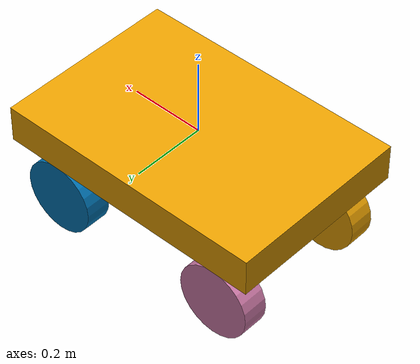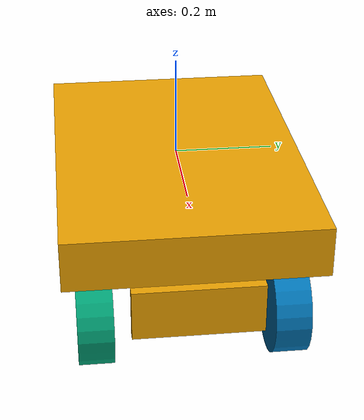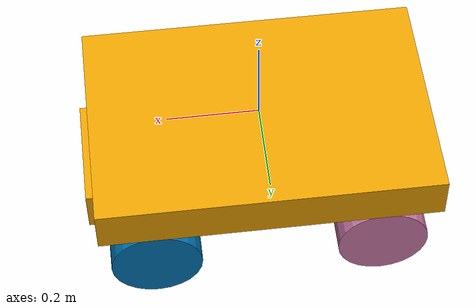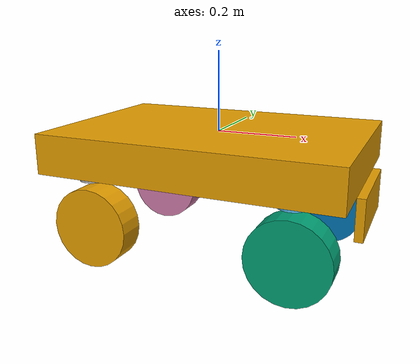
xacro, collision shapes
<?xml version="1.0" encoding="utf-8"?>
<robot name="ranger_mini_v3" xmlns:xacro="http://ros.org/wiki/xacro">

  <!-- Chassis collision properties -->
  <xacro:property name="chassis_x" value="0.74" />
  <xacro:property name="chassis_y" value="0.5" />
  <xacro:property name="chassis_z" value="0.1" />
  <xacro:property name="chassis_z_origin" value="-0.04" />
  <xacro:property name="chassis_sensor_x" value="0.02" />
  <xacro:property name="chassis_sensor_y" value="0.25" />
  <xacro:property name="chassis_sensor_z" value="0.1" />
  <xacro:property name="chassis_sensor_x_origin" value="0.38" />
  <xacro:property name="chassis_sensor_z_origin" value="-0.14" />

  <!-- Wheel steering collision properties -->
  <xacro:property name="wheel_steering_radius" value="0.035" />
  <xacro:property name="wheel_steering_length" value="0.01" />

  <!-- Wheel collision properties -->
  <xacro:property name="wheel_radius" value="0.1" />
  <xacro:property name="wheel_length" value="0.07" />

  <link name="base_link">
    <inertial>
      <mass value="10" />
      <origin xyz="-0.0242698272228022 -0.0030308024613212 0.0544267444673498" rpy="0 0 0" />
      <inertia ixx="0.1354" ixy="0.0" ixz="0.0" iyy="0.2417" iyz="0.0" izz="0.3085" />
    </inertial>
    <visual>
      <origin xyz="0 0 0" rpy="3.141593 0 0" />
      <geometry>
        <mesh filename="package://ranger_mini_v3/meshes/ranger_mini3.dae" />
      </geometry>
    </visual>
    <collision>
      <origin xyz="0 0 ${chassis_z_origin}" rpy="0 0 0" />
      <geometry>
        <box size="${chassis_x} ${chassis_y} ${chassis_z}" />
      </geometry>
    </collision>
    <collision>
      <origin xyz="${chassis_sensor_x_origin} 0 ${chassis_sensor_z_origin}" rpy="0 0 0" />
      <geometry>
        <box size="${chassis_sensor_x} ${chassis_sensor_y} ${chassis_sensor_z}" />
      </geometry>
    </collision>
  </link>

  <link name="fr_steering_wheel_link">
    <inertial>
      <mass value="1" />
      <origin xyz="1.8493E-05 1.2713E-06 0.043679" rpy="0 0 0" />
      <inertia ixx="0.0063625" ixy="-1.0581E-07" ixz="-4.0831E-07" iyy="0.006363" iyz="-3.4944E-08" izz="0.010465" />
    </inertial>
    <visual>
      <origin xyz="0 0 0" rpy="1.570796 0 0" />
      <geometry>
        <mesh filename="package://ranger_mini_v3/meshes/ranger_mini_v3_wheel_steering.dae" />
      </geometry>
    </visual>
    <collision>
      <origin xyz="0 0 0" rpy="0 0 0" />
      <geometry>
        <cylinder radius="${wheel_steering_radius}" length="${wheel_steering_length}" />
      </geometry>
    </collision>
  </link>

  <joint name="fr_steering_joint" type="revolute">
    <origin xyz="0.25 -0.19 -0.1" rpy="0 0 0" />
    <parent link="base_link" />
    <child link="fr_steering_wheel_link" />
    <axis xyz="0 0 -1" />
    <limit effort="5" velocity="6.28" lower="-2.094" upper="2.094" />
  </joint>

  <link name="fr_wheel_link">
    <inertial>
      <mass value="8" />
      <origin xyz="0 0 0" />
      <inertia ixx="0.02047" ixy="0.0" ixz="0.0" iyy="0.02047" iyz="0.0" izz="0.0324" />
    </inertial>
    <visual>
      <origin xyz="0 0 0" rpy="1.570796 0 0" />
      <geometry>
        <mesh filename="package://ranger_mini_v3/meshes/ranger_mini_v3_wheel_tyre.dae" />
      </geometry>
    </visual>
    <collision>
      <origin xyz="0 0 0" rpy="1.570796 0 0" />
      <geometry>
        <cylinder radius="0.10" length="0.07" />
        <cylinder radius="${wheel_radius}" length="${wheel_length}" />
      </geometry>
      <contact>
        <ode>
          <min_depth>0.001</min_depth>
        </ode>
      </contact>
    </collision>
  </link>

  <joint name="fr_wheel" type="continuous">
    <origin xyz="0.0 0.0 -0.123" rpy="0 0 0" />
    <parent link="fr_steering_wheel_link" />
    <child link="fr_wheel_link" />
    <axis xyz="0 1 0" rpy="0 0 0" />
  </joint>

  <link name="fl_steering_wheel_link">
    <inertial>
      <mass value="1" />
      <origin xyz="-0.0017956 -9.6304E-08 0.043642" rpy="0 0 0" />
      <inertia ixx="0.0063695" ixy="-2.1067E-08" ixz="-0.00016867" iyy="0.006363" iyz="-1.0301E-08" izz="0.010458" />
    </inertial>
    <visual>
      <origin xyz="0 0 0" rpy="1.570796 0 3.141593" />
      <geometry>
        <mesh filename="package://ranger_mini_v3/meshes/ranger_mini_v3_wheel_steering.dae" />
      </geometry>
    </visual>
    <collision>
      <origin xyz="0 0 0" rpy="0 0 0" />
      <geometry>
        <cylinder radius="${wheel_steering_radius}" length="${wheel_steering_length}" />
      </geometry>
    </collision>
  </link>

  <joint name="fl_steering_joint" type="revolute">
    <origin xyz="0.25 0.19 -0.1" rpy="0 0 0" />
    <parent link="base_link" />
    <child link="fl_steering_wheel_link" />
    <axis xyz="0 0 -1" />
    <limit effort="5" velocity="6.28" lower="-2.094" upper="2.094" />
  </joint>

  <link name="fl_wheel_link">
    <inertial>
      <mass value="8" />
      <origin xyz="0 0 0" />
      <inertia ixx="0.02047" ixy="0.0" ixz="0.0" iyy="0.02047" iyz="0.0" izz="0.0324" />
    </inertial>
    <visual>
      <origin xyz="0 0 0" rpy="-1.570796 0 0" />
      <geometry>
        <mesh filename="package://ranger_mini_v3/meshes/ranger_mini_v3_wheel_tyre.dae" />
      </geometry>
    </visual>
    <collision>
      <origin xyz="0 0 0" rpy="-1.570796 0 0" />
      <geometry>
        <cylinder radius="${wheel_radius}" length="${wheel_length}" />
      </geometry>
      <contact>
        <ode>
          <min_depth>0.001</min_depth>
        </ode>
      </contact>
    </collision>
  </link>

  <joint name="fl_wheel" type="continuous">
    <origin xyz="0.0 0.0 -0.123" rpy="0 0 0" />
    <parent link="fl_steering_wheel_link" />
    <child link="fl_wheel_link" />
    <axis xyz="0 1 0" rpy="0 0 0" />
  </joint>

  <link name="rl_steering_wheel_link">
    <inertial>
      <mass value="1" />
      <origin xyz="-0.00017093 6.1255E-08 0.043678" rpy="0 0 0" />
      <inertia ixx="0.0063627" ixy="-2.1069E-08" ixz="-1.587E-05" iyy="0.006363" iyz="9.3201E-09" izz="0.010465" />
    </inertial>
    <visual>
      <origin xyz="0 0 0" rpy="1.570796 0.0 3.141593" />
      <geometry>
        <mesh filename="package://ranger_mini_v3/meshes/ranger_mini_v3_wheel_steering.dae" />
      </geometry>
    </visual>
    <collision>
      <origin xyz="0 0 0" rpy="0 0 0" />
      <geometry>
        <cylinder radius="${wheel_steering_radius}" length="${wheel_steering_length}" />
      </geometry>
    </collision>
  </link>

  <joint name="rl_steering_joint" type="revolute">
    <origin xyz="-0.25 0.19 -0.1" rpy="0 0 0" />
    <parent link="base_link" />
    <child link="rl_steering_wheel_link" />
    <axis xyz="0 0 -1" />
    <limit effort="5" velocity="6.28" lower="-2.094" upper="2.094" />
  </joint>

  <link name="rl_wheel_link">
    <inertial>
      <mass value="8" />
      <origin xyz="0 0 0" />
      <inertia ixx="0.02047" ixy="0.0" ixz="0.0" iyy="0.02047" iyz="0.0" izz="0.0324" />
    </inertial>
    <visual>
      <origin xyz="0 0 0" rpy="-1.570796 0 0" />
      <geometry>
        <mesh filename="package://ranger_mini_v3/meshes/ranger_mini_v3_wheel_tyre.dae" />
      </geometry>
    </visual>
    <collision>
      <origin xyz="0 0 0" rpy="-1.570796 0 0" />
      <geometry>
        <cylinder radius="${wheel_radius}" length="${wheel_length}" />
      </geometry>
      <contact>
        <ode>
          <min_depth>0.001</min_depth>
        </ode>
      </contact>
    </collision>
  </link>

  <joint name="rl_wheel" type="continuous">
    <origin xyz="0.0 0.0 -0.123 " rpy="0 0 0" />
    <parent link="rl_steering_wheel_link" />
    <child link="rl_wheel_link" />
    <axis xyz="0 1 0" rpy="0 0 0" />
  </joint>

  <link name="rr_steering_wheel_link">
    <inertial>
      <mass value="1" />
      <origin xyz="0.0 0.0 0.0" />
      <inertia ixx="0.01" ixy="0.0" ixz="0.0" iyy="0.01" iyz="0.0" izz="0.01" />
    </inertial>
    <visual>
      <origin xyz="0 0 0" rpy="1.570796 0 0" />
      <geometry>
        <mesh filename="package://ranger_mini_v3/meshes/ranger_mini_v3_wheel_steering.dae" />
      </geometry>
    </visual>
    <collision>01.570796 0 0" /> <geometry>
        <cylinder radius="${wheel_steering_radius}" length="${wheel_steering_length}" />
      </geometry>
    </collision>
  </link>

  <joint name="rr_steering_joint" type="revolute">
    <origin xyz="-0.25 -0.19 -0.1" rpy="0 0 0" />
    <parent link="base_link" />
    <child link="rr_steering_wheel_link" />
    <axis xyz="0 0 -1" rpy="0 0 0" />
    <limit effort="5" velocity="6.28" lower="-2.094" upper="2.094" />
  </joint>

  <link name="rr_wheel_link">
    <inertial>
      <mass value="8" />
      <origin xyz="0 0 0" />
      <inertia ixx="0.02047" ixy="0.0" ixz="0.0" iyy="0.02047" iyz="0.0" izz="0.0324" />
    </inertial>
    <visual>
      <origin xyz="0 0 0" rpy="1.570796 0 0" />
      <geometry>
        <mesh filename="package://ranger_mini_v3/meshes/ranger_mini_v3_wheel_tyre.dae" />
      </geometry>
    </visual>
    <collision>
      <origin xyz="0 0 0" rpy="1.570796 0 0" />
      <geometry>
        <cylinder radius="${wheel_radius}" length="${wheel_length}" />
      </geometry>
      <contact>
        <ode>
          <min_depth>0.001</min_depth>
        </ode>
      </contact>
    </collision>
  </link>

  <joint name="rr_wheel" type="continuous">
    <origin xyz="0.0 0.0 -0.123 " rpy="0 0 0" />
    <parent link="rr_steering_wheel_link" />
    <child link="rr_wheel_link" />
    <axis xyz="0 1 0" rpy="0 0 0" />
  </joint>

  <transmission name="fl_steering_wheel_trans">
    <type>transmission_interface/SimpleTransmission</type>
    <joint name="fl_steering_joint">
      <hardwareInterface>hardware_interface/PositionJointInterface</hardwareInterface>
    </joint>
    <actuator name="fl_steering_wheel_motor">
      <hardwareInterface>hardware_interface/PositionJointInterface</hardwareInterface>
      <mechanicalReduction>30</mechanicalReduction>
    </actuator>
  </transmission>

  <transmission name="fr_steering_wheel_trans">
    <type>transmission_interface/SimpleTransmission</type>
    <joint name="fr_steering_joint">
      <hardwareInterface>hardware_interface/PositionJointInterface</hardwareInterface>
    </joint>
    <actuator name="fr_steering_wheel_motor">
      <hardwareInterface>hardware_interface/PositionJointInterface</hardwareInterface>
      <mechanicalReduction>30</mechanicalReduction>
    </actuator>
  </transmission>

  <transmission name="rl_steering_wheel_trans">
    <type>transmission_interface/SimpleTransmission</type>
    <joint name="rl_steering_joint">
      <hardwareInterface>hardware_interface/PositionJointInterface</hardwareInterface>
    </joint>
    <actuator name="rl_steering_wheel_motor">
      <hardwareInterface>hardware_interface/PositionJointInterface</hardwareInterface>
      <mechanicalReduction>30</mechanicalReduction>
    </actuator>
  </transmission>

  <transmission name="rr_steering_wheel_trans">
    <type>transmission_interface/SimpleTransmission</type>
    <joint name="rr_steering_joint">
      <hardwareInterface>hardware_interface/PositionJointInterface</hardwareInterface>
    </joint>
    <actuator name="rr_steering_wheel_motor">
      <hardwareInterface>hardware_interface/PositionJointInterface</hardwareInterface>
      <mechanicalReduction>30</mechanicalReduction>
    </actuator>
  </transmission>

  <transmission name="fl_wheel_trans">
    <type>transmission_interface/SimpleTransmission</type>
    <joint name="fl_wheel">
      <hardwareInterface>hardware_interface/VelocityJointInterface</hardwareInterface>
    </joint>
    <actuator name="fl_wheel_motor">
      <hardwareInterface>hardware_interface/VelocityJointInterface</hardwareInterface>
      <mechanicalReduction>30</mechanicalReduction>
    </actuator>
  </transmission>

  <transmission name="fr_wheel_trans">
    <type>transmission_interface/SimpleTransmission</type>
    <joint name="fr_wheel">
      <hardwareInterface>hardware_interface/VelocityJointInterface</hardwareInterface>
    </joint>
    <actuator name="fr_wheel_motor">
      <hardwareInterface>hardware_interface/VelocityJointInterface</hardwareInterface>
      <mechanicalReduction>30</mechanicalReduction>
    </actuator>
  </transmission>

  <transmission name="rl_wheel_trans">
    <type>transmission_interface/SimpleTransmission</type>
    <joint name="rl_wheel">
      <hardwareInterface>hardware_interface/VelocityJointInterface</hardwareInterface>
    </joint>
    <actuator name="rl_wheel_motor">
      <hardwareInterface>hardware_interface/VelocityJointInterface</hardwareInterface>
      <mechanicalReduction>30</mechanicalReduction>
    </actuator>
  </transmission>

  <transmission name="rr_wheel_trans">
    <type>transmission_interface/SimpleTransmission</type>
    <joint name="rr_wheel">
      <hardwareInterface>hardware_interface/VelocityJointInterface</hardwareInterface>
    </joint>
    <actuator name="rr_wheel_motor">
      <hardwareInterface>hardware_interface/VelocityJointInterface</hardwareInterface>
      <mechanicalReduction>30</mechanicalReduction>
    </actuator>
  </transmission>

  <!-- ros2_control Configuration -->
  <ros2_control name="ranger_mini_control" type="system">
    <hardware>
      <plugin>topic_based_ros2_control/TopicBasedSystem</plugin>
      <param name="joint_commands_topic">/robot_joint_command</param>
      <param name="joint_states_topic">/robot_joint_states</param>
      <param name="trigger_joint_command_threshold">0.001</param>
      <param name="sum_wrapped_joint_states">true</param>
    </hardware>
    <joint name="fl_steering_joint">
      <command_interface name="position" />
      <command_interface name="velocity" />
      <state_interface name="position" />
      <state_interface name="velocity" />
    </joint>
    <joint name="fl_wheel">
      <command_interface name="position" />
      <command_interface name="velocity" />
      <state_interface name="position" />
      <state_interface name="velocity" />
    </joint>
    <joint name="fr_steering_joint">
      <command_interface name="position" />
      <command_interface name="velocity" />
      <state_interface name="position" />
      <state_interface name="velocity" />
    </joint>
    <joint name="fr_wheel">
      <command_interface name="position" />
      <command_interface name="velocity" />
      <state_interface name="position" />
      <state_interface name="velocity" />
    </joint>
    <joint name="rr_steering_joint">
      <command_interface name="position" />
      <command_interface name="velocity" />
      <state_interface name="position" />
      <state_interface name="velocity" />
    </joint>
    <joint name="rl_wheel">
      <command_interface name="position" />
      <command_interface name="velocity" />
      <state_interface name="position" />
      <state_interface name="velocity" />
    </joint>
    <joint name="rr_wheel">
      <command_interface name="position" />
      <command_interface name="velocity" />
      <state_interface name="position" />
      <state_interface name="velocity" />
    </joint>
    <joint name="rl_steering_joint">
      <command_interface name="position" />
      <command_interface name="velocity" />
      <state_interface name="position" />
      <state_interface name="velocity" />
    </joint>
  </ros2_control>

</robot>
